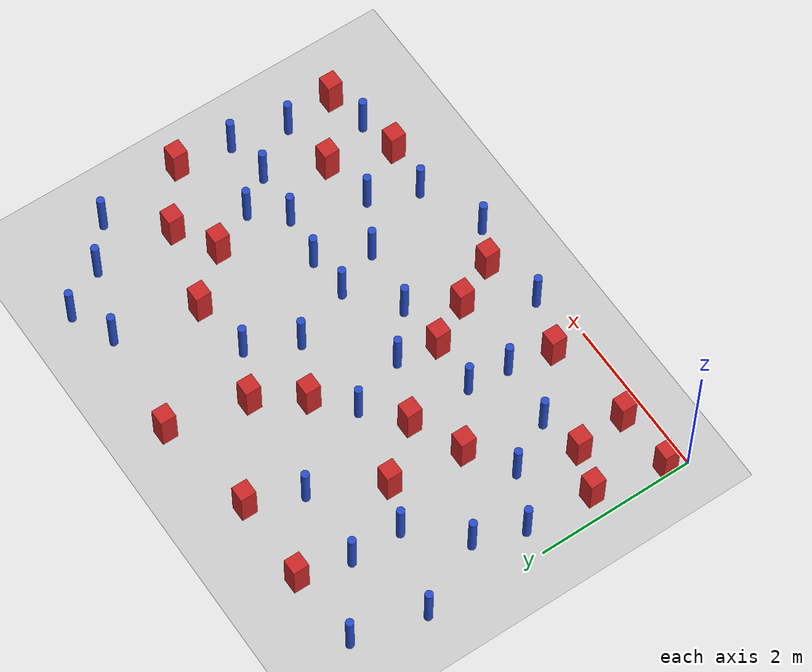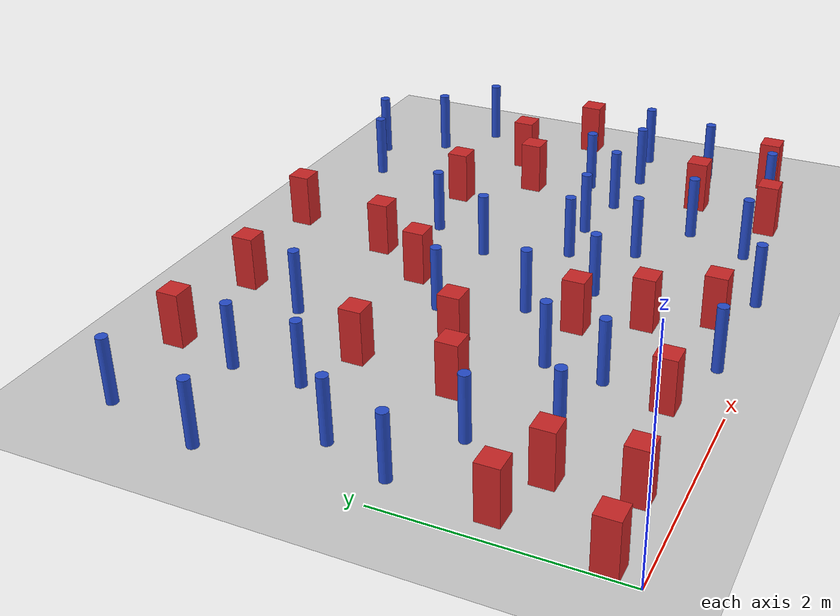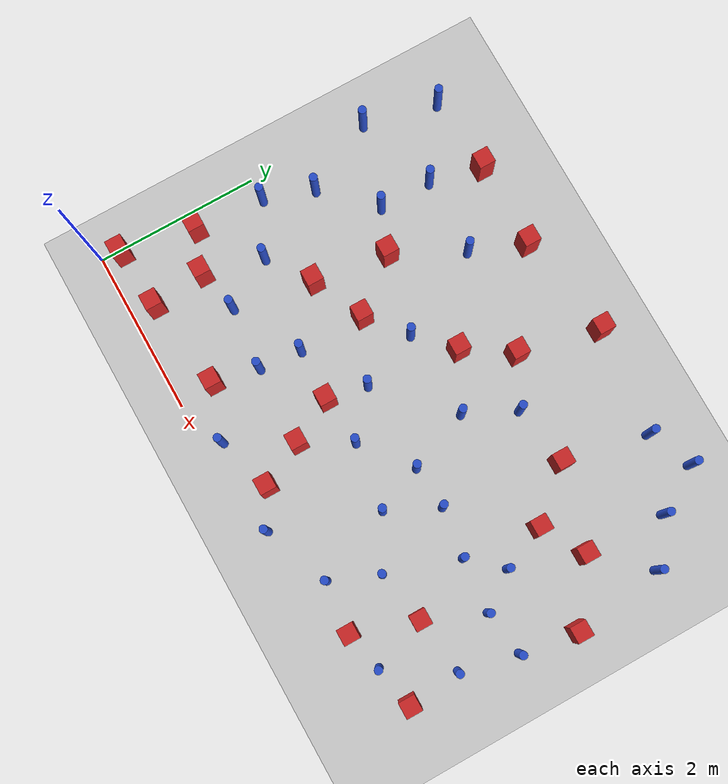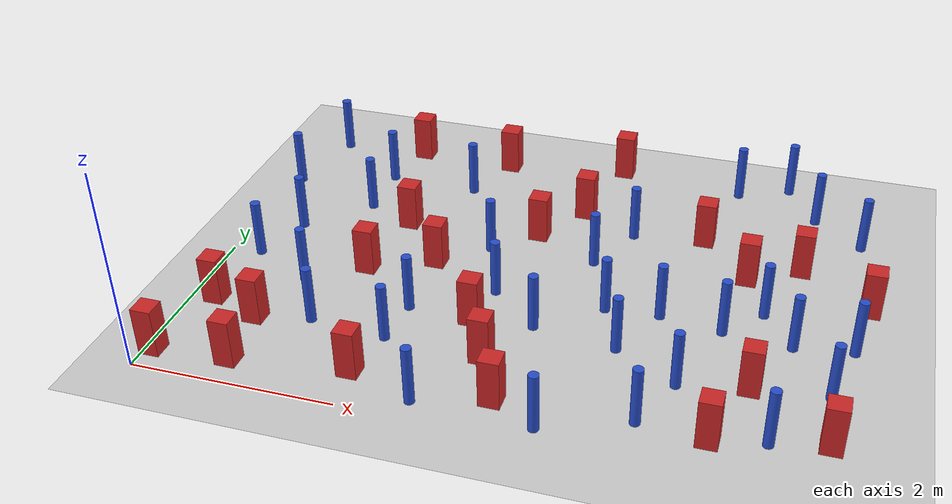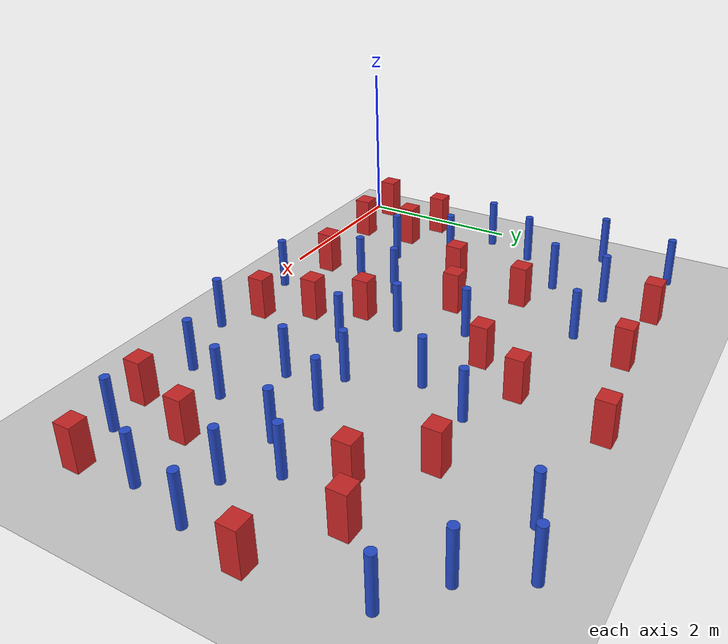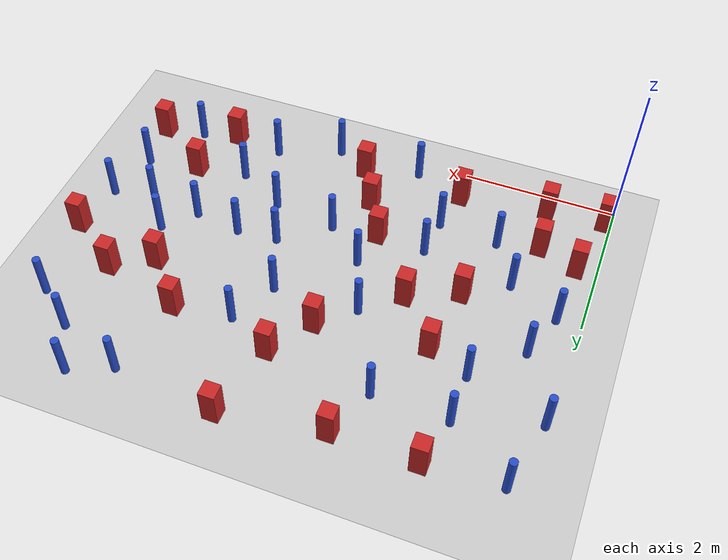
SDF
<sdf version="1.6">
 <world name="default">
  <model name="ground_plane">
   <static>1</static>
   <link name="link">
    <collision name="collision">
     <geometry><plane><normal>0 0 1</normal><size>100 100</size></plane></geometry>
     <surface><friction><ode><mu>100</mu><mu2>50</mu2></ode></friction></surface>
    </collision>
    <visual name="visual">
     <cast_shadows>0</cast_shadows>
     <geometry><plane><normal>0 0 1</normal><size>100 100</size></plane></geometry>
     <material>
      <ambient>1.0 1.0 1.0 1.0</ambient>
      <diffuse>0.8 0.8 0.8 1.0</diffuse>
      <specular>0.01 0.01 0.01 1.000000</specular>
     </material>
    </visual>
   </link>
  </model>
  <model name="square_post_obstacle0">
   <static>true</static>
   <pose>3.04580464808 0.973924702898 8.22691968438e-08 7.2212513382e-06 -7.54495500217e-07 2.29674213826e-05</pose>
   <link name="link">
    <pose>0 0 0.25 0 -0 0</pose>
    <inertial>
     <mass>100</mass>
     <inertia>
      <ixx>0.166667</ixx>
      <ixy>0</ixy>
      <ixz>0</ixz>
      <iyy>0.166667</iyy>
      <iyz>0</iyz>
      <izz>0.166667</izz>
     </inertia>
    </inertial>
    <collision name="collision"><geometry><box><size>.2 .2 .5</size></box></geometry></collision>
    <visual name="visual">
     <geometry><box><size>.2 .2 .5</size></box></geometry>
     <material>
      <script><name>Gazebo/Red</name><uri>file://media/materials/scripts/gazebo.material</uri></script>
     </material>
    </visual>
   </link>
  </model>
  <model name="pole_obstacle2">
   <static>true</static>
   <pose>5.45777131035 2.34422630777 2.88873142074e-08 -9.90536690245e-09 4.6021994898e-07 -1.20965994966e-07</pose>
   <link name="link">
    <pose>0 0 0.3 0 -0 0</pose>
    <inertial>
     <mass>1</mass>
     <inertia><ixx>0.145833</ixx><ixy>0</ixy><ixz>0</ixz><iyy>0.145833</iyy><iyz>0</iyz><izz>0.125</izz></inertia>
    </inertial>
    <collision name="collision">
     <geometry><cylinder><radius>0.05</radius><length>.6</length></cylinder></geometry>
    </collision>
    <visual name="visual">
     <geometry><cylinder><radius>0.05</radius><length>.6</length></cylinder></geometry>
     <material>
      <script><name>Gazebo/Blue</name><uri>file://media/materials/scripts/gazebo.material</uri></script>
     </material>
    </visual>
   </link>
  </model>
  <model name="pole_obstacle6">
   <static>true</static>
   <pose>2.04491357636 3.79223943982 2.88873142074e-08 -9.9053669043e-09 4.60219948975e-07 -1.2096599497e-07</pose>
   <link name="link">
    <pose>0 0 0.3 0 -0 0</pose>
    <inertial>
     <mass>1</mass>
     <inertia><ixx>0.145833</ixx><ixy>0</ixy><ixz>0</ixz><iyy>0.145833</iyy><iyz>0</iyz><izz>0.125</izz></inertia>
    </inertial>
    <collision name="collision">
     <geometry><cylinder><radius>0.05</radius><length>.6</length></cylinder></geometry>
    </collision>
    <visual name="visual">
     <geometry><cylinder><radius>0.05</radius><length>.6</length></cylinder></geometry>
     <material>
      <script><name>Gazebo/Blue</name><uri>file://media/materials/scripts/gazebo.material</uri></script>
     </material>
    </visual>
   </link>
  </model>
  <model name="square_post_obstacle10">
   <static>true</static>
   <pose>6.43679771532 2.68238782263 8.22691968438e-08 7.2212513382e-06 -7.54495500217e-07 2.29674213826e-05</pose>
   <link name="link">
    <pose>0 0 0.25 0 -0 0</pose>
    <inertial>
     <mass>100</mass>
     <inertia>
      <ixx>0.166667</ixx>
      <ixy>0</ixy>
      <ixz>0</ixz>
      <iyy>0.166667</iyy>
      <iyz>0</iyz>
      <izz>0.166667</izz>
     </inertia>
    </inertial>
    <collision name="collision"><geometry><box><size>.2 .2 .5</size></box></geometry></collision>
    <visual name="visual">
     <geometry><box><size>.2 .2 .5</size></box></geometry>
     <material>
      <script><name>Gazebo/Red</name><uri>file://media/materials/scripts/gazebo.material</uri></script>
     </material>
    </visual>
   </link>
  </model>
  <model name="pole_obstacle14">
   <static>true</static>
   <pose>2.58773399289 2.71610376358 2.88873142074e-08 -9.90536690232e-09 4.6021994898e-07 -1.20965994968e-07</pose>
   <link name="link">
    <pose>0 0 0.3 0 -0 0</pose>
    <inertial>
     <mass>1</mass>
     <inertia><ixx>0.145833</ixx><ixy>0</ixy><ixz>0</ixz><iyy>0.145833</iyy><iyz>0</iyz><izz>0.125</izz></inertia>
    </inertial>
    <collision name="collision">
     <geometry><cylinder><radius>0.05</radius><length>.6</length></cylinder></geometry>
    </collision>
    <visual name="visual">
     <geometry><cylinder><radius>0.05</radius><length>.6</length></cylinder></geometry>
     <material>
      <script><name>Gazebo/Blue</name><uri>file://media/materials/scripts/gazebo.material</uri></script>
     </material>
    </visual>
   </link>
  </model>
  <model name="pole_obstacle20">
   <static>true</static>
   <pose>0.95430784977 1.68152880618 2.88873142074e-08 -9.90536690202e-09 4.6021994898e-07 -1.20965994965e-07</pose>
   <link name="link">
    <pose>0 0 0.3 0 -0 0</pose>
    <inertial>
     <mass>1</mass>
     <inertia><ixx>0.145833</ixx><ixy>0</ixy><ixz>0</ixz><iyy>0.145833</iyy><iyz>0</iyz><izz>0.125</izz></inertia>
    </inertial>
    <collision name="collision">
     <geometry><cylinder><radius>0.05</radius><length>.6</length></cylinder></geometry>
    </collision>
    <visual name="visual">
     <geometry><cylinder><radius>0.05</radius><length>.6</length></cylinder></geometry>
     <material>
      <script><name>Gazebo/Blue</name><uri>file://media/materials/scripts/gazebo.material</uri></script>
     </material>
    </visual>
   </link>
  </model>
  <model name="pole_obstacle23">
   <static>true</static>
   <pose>5.45672125437 4.74769062917 2.88873142074e-08 -9.90536690842e-09 4.60219948965e-07 -1.20965994976e-07</pose>
   <link name="link">
    <pose>0 0 0.3 0 -0 0</pose>
    <inertial>
     <mass>1</mass>
     <inertia><ixx>0.145833</ixx><ixy>0</ixy><ixz>0</ixz><iyy>0.145833</iyy><iyz>0</iyz><izz>0.125</izz></inertia>
    </inertial>
    <collision name="collision">
     <geometry><cylinder><radius>0.05</radius><length>.6</length></cylinder></geometry>
    </collision>
    <visual name="visual">
     <geometry><cylinder><radius>0.05</radius><length>.6</length></cylinder></geometry>
     <material>
      <script><name>Gazebo/Blue</name><uri>file://media/materials/scripts/gazebo.material</uri></script>
     </material>
    </visual>
   </link>
  </model>
  <model name="square_post_obstacle20">
   <static>true</static>
   <pose>5.46462495724 1.21053023007 8.22691968438e-08 7.2212513382e-06 -7.54495500217e-07 2.29674213826e-05</pose>
   <link name="link">
    <pose>0 0 0.25 0 -0 0</pose>
    <inertial>
     <mass>100</mass>
     <inertia>
      <ixx>0.166667</ixx>
      <ixy>0</ixy>
      <ixz>0</ixz>
      <iyy>0.166667</iyy>
      <iyz>0</iyz>
      <izz>0.166667</izz>
     </inertia>
    </inertial>
    <collision name="collision"><geometry><box><size>.2 .2 .5</size></box></geometry></collision>
    <visual name="visual">
     <geometry><box><size>.2 .2 .5</size></box></geometry>
     <material>
      <script><name>Gazebo/Red</name><uri>file://media/materials/scripts/gazebo.material</uri></script>
     </material>
    </visual>
   </link>
  </model>
  <model name="pole_obstacle30">
   <static>true</static>
   <pose>1.30149947294 1.07301521637 2.88873142074e-08 -9.90536689672e-09 4.60219948993e-07 -1.20965994959e-07</pose>
   <link name="link">
    <pose>0 0 0.3 0 -0 0</pose>
    <inertial>
     <mass>1</mass>
     <inertia><ixx>0.145833</ixx><ixy>0</ixy><ixz>0</ixz><iyy>0.145833</iyy><iyz>0</iyz><izz>0.125</izz></inertia>
    </inertial>
    <collision name="collision">
     <geometry><cylinder><radius>0.05</radius><length>.6</length></cylinder></geometry>
    </collision>
    <visual name="visual">
     <geometry><cylinder><radius>0.05</radius><length>.6</length></cylinder></geometry>
     <material>
      <script><name>Gazebo/Blue</name><uri>file://media/materials/scripts/gazebo.material</uri></script>
     </material>
    </visual>
   </link>
  </model>
  <model name="pole_obstacle32">
   <static>true</static>
   <pose>4.92317373105 4.51609181594 2.88873142074e-08 -9.90536690842e-09 4.60219948965e-07 -1.20965994976e-07</pose>
   <link name="link">
    <pose>0 0 0.3 0 -0 0</pose>
    <inertial>
     <mass>1</mass>
     <inertia><ixx>0.145833</ixx><ixy>0</ixy><ixz>0</ixz><iyy>0.145833</iyy><iyz>0</iyz><izz>0.125</izz></inertia>
    </inertial>
    <collision name="collision">
     <geometry><cylinder><radius>0.05</radius><length>.6</length></cylinder></geometry>
    </collision>
    <visual name="visual">
     <geometry><cylinder><radius>0.05</radius><length>.6</length></cylinder></geometry>
     <material>
      <script><name>Gazebo/Blue</name><uri>file://media/materials/scripts/gazebo.material</uri></script>
     </material>
    </visual>
   </link>
  </model>
  <model name="square_post_obstacle36">
   <static>true</static>
   <pose>0.258428879469 1.14807808996 8.22691968438e-08 7.2212513382e-06 -7.54495500217e-07 2.29674213826e-05</pose>
   <link name="link">
    <pose>0 0 0.25 0 -0 0</pose>
    <inertial>
     <mass>100</mass>
     <inertia>
      <ixx>0.166667</ixx>
      <ixy>0</ixy>
      <ixz>0</ixz>
      <iyy>0.166667</iyy>
      <iyz>0</iyz>
      <izz>0.166667</izz>
     </inertia>
    </inertial>
    <collision name="collision"><geometry><box><size>.2 .2 .5</size></box></geometry></collision>
    <visual name="visual">
     <geometry><box><size>.2 .2 .5</size></box></geometry>
     <material>
      <script><name>Gazebo/Red</name><uri>file://media/materials/scripts/gazebo.material</uri></script>
     </material>
    </visual>
   </link>
  </model>
  <model name="square_post_obstacle39">
   <static>true</static>
   <pose>2.30296311528 4.43458114821 8.22691968438e-08 7.2212513382e-06 -7.54495500217e-07 2.29674213826e-05</pose>
   <link name="link">
    <pose>0 0 0.25 0 -0 0</pose>
    <inertial>
     <mass>100</mass>
     <inertia>
      <ixx>0.166667</ixx>
      <ixy>0</ixy>
      <ixz>0</ixz>
      <iyy>0.166667</iyy>
      <iyz>0</iyz>
      <izz>0.166667</izz>
     </inertia>
    </inertial>
    <collision name="collision"><geometry><box><size>.2 .2 .5</size></box></geometry></collision>
    <visual name="visual">
     <geometry><box><size>.2 .2 .5</size></box></geometry>
     <material>
      <script><name>Gazebo/Red</name><uri>file://media/materials/scripts/gazebo.material</uri></script>
     </material>
    </visual>
   </link>
  </model>
  <model name="pole_obstacle49">
   <static>true</static>
   <pose>1.08296176439 3.17078987473 2.88873142074e-08 -9.90536689791e-09 4.6021994899e-07 -1.20965994959e-07</pose>
   <link name="link">
    <pose>0 0 0.3 0 -0 0</pose>
    <inertial>
     <mass>1</mass>
     <inertia><ixx>0.145833</ixx><ixy>0</ixy><ixz>0</ixz><iyy>0.145833</iyy><iyz>0</iyz><izz>0.125</izz></inertia>
    </inertial>
    <collision name="collision">
     <geometry><cylinder><radius>0.05</radius><length>.6</length></cylinder></geometry>
    </collision>
    <visual name="visual">
     <geometry><cylinder><radius>0.05</radius><length>.6</length></cylinder></geometry>
     <material>
      <script><name>Gazebo/Blue</name><uri>file://media/materials/scripts/gazebo.material</uri></script>
     </material>
    </visual>
   </link>
  </model>
  <model name="pole_obstacle53">
   <static>true</static>
   <pose>2.62495455351 0.22612331151 2.88873142074e-08 -9.90536689395e-09 4.60219949e-07 -1.20965994954e-07</pose>
   <link name="link">
    <pose>0 0 0.3 0 -0 0</pose>
    <inertial>
     <mass>1</mass>
     <inertia><ixx>0.145833</ixx><ixy>0</ixy><ixz>0</ixz><iyy>0.145833</iyy><iyz>0</iyz><izz>0.125</izz></inertia>
    </inertial>
    <collision name="collision">
     <geometry><cylinder><radius>0.05</radius><length>.6</length></cylinder></geometry>
    </collision>
    <visual name="visual">
     <geometry><cylinder><radius>0.05</radius><length>.6</length></cylinder></geometry>
     <material>
      <script><name>Gazebo/Blue</name><uri>file://media/materials/scripts/gazebo.material</uri></script>
     </material>
    </visual>
   </link>
  </model>
  <model name="pole_obstacle59">
   <static>true</static>
   <pose>3.96785897545 3.36974669086 2.88873142074e-08 -9.90536690919e-09 4.60219948964e-07 -1.20965994979e-07</pose>
   <link name="link">
    <pose>0 0 0.3 0 -0 0</pose>
    <inertial>
     <mass>1</mass>
     <inertia><ixx>0.145833</ixx><ixy>0</ixy><ixz>0</ixz><iyy>0.145833</iyy><iyz>0</iyz><izz>0.125</izz></inertia>
    </inertial>
    <collision name="collision">
     <geometry><cylinder><radius>0.05</radius><length>.6</length></cylinder></geometry>
    </collision>
    <visual name="visual">
     <geometry><cylinder><radius>0.05</radius><length>.6</length></cylinder></geometry>
     <material>
      <script><name>Gazebo/Blue</name><uri>file://media/materials/scripts/gazebo.material</uri></script>
     </material>
    </visual>
   </link>
  </model>
  <model name="square_post_obstacle48">
   <static>true</static>
   <pose>2.12343648834 2.33251311773 8.22691968438e-08 7.2212513382e-06 -7.54495500217e-07 2.29674213826e-05</pose>
   <link name="link">
    <pose>0 0 0.25 0 -0 0</pose>
    <inertial>
     <mass>100</mass>
     <inertia>
      <ixx>0.166667</ixx>
      <ixy>0</ixy>
      <ixz>0</ixz>
      <iyy>0.166667</iyy>
      <iyz>0</iyz>
      <izz>0.166667</izz>
     </inertia>
    </inertial>
    <collision name="collision"><geometry><box><size>.2 .2 .5</size></box></geometry></collision>
    <visual name="visual">
     <geometry><box><size>.2 .2 .5</size></box></geometry>
     <material>
      <script><name>Gazebo/Red</name><uri>file://media/materials/scripts/gazebo.material</uri></script>
     </material>
    </visual>
   </link>
  </model>
  <model name="square_post_obstacle50">
   <static>true</static>
   <pose>2.77005549722 1.49828917938 8.22691968438e-08 7.2212513382e-06 -7.54495500217e-07 2.29674213826e-05</pose>
   <link name="link">
    <pose>0 0 0.25 0 -0 0</pose>
    <inertial>
     <mass>100</mass>
     <inertia>
      <ixx>0.166667</ixx>
      <ixy>0</ixy>
      <ixz>0</ixz>
      <iyy>0.166667</iyy>
      <iyz>0</iyz>
      <izz>0.166667</izz>
     </inertia>
    </inertial>
    <collision name="collision"><geometry><box><size>.2 .2 .5</size></box></geometry></collision>
    <visual name="visual">
     <geometry><box><size>.2 .2 .5</size></box></geometry>
     <material>
      <script><name>Gazebo/Red</name><uri>file://media/materials/scripts/gazebo.material</uri></script>
     </material>
    </visual>
   </link>
  </model>
  <model name="square_post_obstacle55">
   <static>true</static>
   <pose>1.24052296039 4.4428766237 8.22691968438e-08 7.2212513382e-06 -7.54495500217e-07 2.29674213826e-05</pose>
   <link name="link">
    <pose>0 0 0.25 0 -0 0</pose>
    <inertial>
     <mass>100</mass>
     <inertia>
      <ixx>0.166667</ixx>
      <ixy>0</ixy>
      <ixz>0</ixz>
      <iyy>0.166667</iyy>
      <iyz>0</iyz>
      <izz>0.166667</izz>
     </inertia>
    </inertial>
    <collision name="collision"><geometry><box><size>.2 .2 .5</size></box></geometry></collision>
    <visual name="visual">
     <geometry><box><size>.2 .2 .5</size></box></geometry>
     <material>
      <script><name>Gazebo/Red</name><uri>file://media/materials/scripts/gazebo.material</uri></script>
     </material>
    </visual>
   </link>
  </model>
  <model name="square_post_obstacle59">
   <static>true</static>
   <pose>3.37557135459 3.66950542198 8.22691968438e-08 7.2212513382e-06 -7.54495500217e-07 2.29674213826e-05</pose>
   <link name="link">
    <pose>0 0 0.25 0 -0 0</pose>
    <inertial>
     <mass>100</mass>
     <inertia>
      <ixx>0.166667</ixx>
      <ixy>0</ixy>
      <ixz>0</ixz>
      <iyy>0.166667</iyy>
      <iyz>0</iyz>
      <izz>0.166667</izz>
     </inertia>
    </inertial>
    <collision name="collision"><geometry><box><size>.2 .2 .5</size></box></geometry></collision>
    <visual name="visual">
     <geometry><box><size>.2 .2 .5</size></box></geometry>
     <material>
      <script><name>Gazebo/Red</name><uri>file://media/materials/scripts/gazebo.material</uri></script>
     </material>
    </visual>
   </link>
  </model>
  <model name="square_post_obstacle65">
   <static>true</static>
   <pose>4.70421875662 3.47562799886 8.22691968438e-08 7.2212513382e-06 -7.54495500217e-07 2.29674213826e-05</pose>
   <link name="link">
    <pose>0 0 0.25 0 -0 0</pose>
    <inertial>
     <mass>100</mass>
     <inertia>
      <ixx>0.166667</ixx>
      <ixy>0</ixy>
      <ixz>0</ixz>
      <iyy>0.166667</iyy>
      <iyz>0</iyz>
      <izz>0.166667</izz>
     </inertia>
    </inertial>
    <collision name="collision"><geometry><box><size>.2 .2 .5</size></box></geometry></collision>
    <visual name="visual">
     <geometry><box><size>.2 .2 .5</size></box></geometry>
     <material>
      <script><name>Gazebo/Red</name><uri>file://media/materials/scripts/gazebo.material</uri></script>
     </material>
    </visual>
   </link>
  </model>
  <model name="pole_obstacle77">
   <static>true</static>
   <pose>0.0829624721579 3.48288292947 2.88873142074e-08 -9.90536689907e-09 4.60219948988e-07 -1.20965994961e-07</pose>
   <link name="link">
    <pose>0 0 0.3 0 -0 0</pose>
    <inertial>
     <mass>1</mass>
     <inertia><ixx>0.145833</ixx><ixy>0</ixy><ixz>0</ixz><iyy>0.145833</iyy><iyz>0</iyz><izz>0.125</izz></inertia>
    </inertial>
    <collision name="collision">
     <geometry><cylinder><radius>0.05</radius><length>.6</length></cylinder></geometry>
    </collision>
    <visual name="visual">
     <geometry><cylinder><radius>0.05</radius><length>.6</length></cylinder></geometry>
     <material>
      <script><name>Gazebo/Blue</name><uri>file://media/materials/scripts/gazebo.material</uri></script>
     </material>
    </visual>
   </link>
  </model>
  <model name="square_post_obstacle73">
   <static>true</static>
   <pose>5.22164903736 2.88928919019 8.22691968438e-08 7.2212513382e-06 -7.54495500217e-07 2.29674213826e-05</pose>
   <link name="link">
    <pose>0 0 0.25 0 -0 0</pose>
    <inertial>
     <mass>100</mass>
     <inertia>
      <ixx>0.166667</ixx>
      <ixy>0</ixy>
      <ixz>0</ixz>
      <iyy>0.166667</iyy>
      <iyz>0</iyz>
      <izz>0.166667</izz>
     </inertia>
    </inertial>
    <collision name="collision"><geometry><box><size>.2 .2 .5</size></box></geometry></collision>
    <visual name="visual">
     <geometry><box><size>.2 .2 .5</size></box></geometry>
     <material>
      <script><name>Gazebo/Red</name><uri>file://media/materials/scripts/gazebo.material</uri></script>
     </material>
    </visual>
   </link>
  </model>
  <model name="pole_obstacle92">
   <static>true</static>
   <pose>2.07862077537 1.00634107424 2.88873142074e-08 -9.90536692432e-09 4.60219948928e-07 -1.2096599499e-07</pose>
   <link name="link">
    <pose>0 0 0.3 0 -0 0</pose>
    <inertial>
     <mass>1</mass>
     <inertia><ixx>0.145833</ixx><ixy>0</ixy><ixz>0</ixz><iyy>0.145833</iyy><iyz>0</iyz><izz>0.125</izz></inertia>
    </inertial>
    <collision name="collision">
     <geometry><cylinder><radius>0.05</radius><length>.6</length></cylinder></geometry>
    </collision>
    <visual name="visual">
     <geometry><cylinder><radius>0.05</radius><length>.6</length></cylinder></geometry>
     <material>
      <script><name>Gazebo/Blue</name><uri>file://media/materials/scripts/gazebo.material</uri></script>
     </material>
    </visual>
   </link>
  </model>
  <model name="square_post_obstacle94">
   <static>true</static>
   <pose>0.0878403575449 0.254519244113 8.22691968438e-08 7.2212513382e-06 -7.54495500217e-07 2.29674213826e-05</pose>
   <link name="link">
    <pose>0 0 0.25 0 -0 0</pose>
    <inertial>
     <mass>100</mass>
     <inertia>
      <ixx>0.166667</ixx>
      <ixy>0</ixy>
      <ixz>0</ixz>
      <iyy>0.166667</iyy>
      <iyz>0</iyz>
      <izz>0.166667</izz>
     </inertia>
    </inertial>
    <collision name="collision"><geometry><box><size>.2 .2 .5</size></box></geometry></collision>
    <visual name="visual">
     <geometry><box><size>.2 .2 .5</size></box></geometry>
     <material>
      <script><name>Gazebo/Red</name><uri>file://media/materials/scripts/gazebo.material</uri></script>
     </material>
    </visual>
   </link>
  </model>
  <model name="pole_obstacle104">
   <static>true</static>
   <pose>5.78963744642 4.18799203884 2.88873142074e-08 -9.90536690842e-09 4.60219948965e-07 -1.20965994976e-07</pose>
   <link name="link">
    <pose>0 0 0.3 0 -0 0</pose>
    <inertial>
     <mass>1</mass>
     <inertia><ixx>0.145833</ixx><ixy>0</ixy><ixz>0</ixz><iyy>0.145833</iyy><iyz>0</iyz><izz>0.125</izz></inertia>
    </inertial>
    <collision name="collision">
     <geometry><cylinder><radius>0.05</radius><length>.6</length></cylinder></geometry>
    </collision>
    <visual name="visual">
     <geometry><cylinder><radius>0.05</radius><length>.6</length></cylinder></geometry>
     <material>
      <script><name>Gazebo/Blue</name><uri>file://media/materials/scripts/gazebo.material</uri></script>
     </material>
    </visual>
   </link>
  </model>
  <model name="square_post_obstacle100">
   <static>true</static>
   <pose>5.73233366058 3.1875269093 8.22691968438e-08 7.2212513382e-06 -7.54495500217e-07 2.29674213826e-05</pose>
   <link name="link">
    <pose>0 0 0.25 0 -0 0</pose>
    <inertial>
     <mass>100</mass>
     <inertia>
      <ixx>0.166667</ixx>
      <ixy>0</ixy>
      <ixz>0</ixz>
      <iyy>0.166667</iyy>
      <iyz>0</iyz>
      <izz>0.166667</izz>
     </inertia>
    </inertial>
    <collision name="collision"><geometry><box><size>.2 .2 .5</size></box></geometry></collision>
    <visual name="visual">
     <geometry><box><size>.2 .2 .5</size></box></geometry>
     <material>
      <script><name>Gazebo/Red</name><uri>file://media/materials/scripts/gazebo.material</uri></script>
     </material>
    </visual>
   </link>
  </model>
  <model name="pole_obstacle111">
   <static>true</static>
   <pose>0.289990314903 4.38085286651 2.88873142074e-08 -9.90536689592e-09 4.60219948995e-07 -1.20965994956e-07</pose>
   <link name="link">
    <pose>0 0 0.3 0 -0 0</pose>
    <inertial>
     <mass>1</mass>
     <inertia><ixx>0.145833</ixx><ixy>0</ixy><ixz>0</ixz><iyy>0.145833</iyy><iyz>0</iyz><izz>0.125</izz></inertia>
    </inertial>
    <collision name="collision">
     <geometry><cylinder><radius>0.05</radius><length>.6</length></cylinder></geometry>
    </collision>
    <visual name="visual">
     <geometry><cylinder><radius>0.05</radius><length>.6</length></cylinder></geometry>
     <material>
      <script><name>Gazebo/Blue</name><uri>file://media/materials/scripts/gazebo.material</uri></script>
     </material>
    </visual>
   </link>
  </model>
  <model name="square_post_obstacle106">
   <static>true</static>
   <pose>1.96487640219 0.457601085435 8.22691968438e-08 7.2212513382e-06 -7.54495500217e-07 2.29674213826e-05</pose>
   <link name="link">
    <pose>0 0 0.25 0 -0 0</pose>
    <inertial>
     <mass>100</mass>
     <inertia>
      <ixx>0.166667</ixx>
      <ixy>0</ixy>
      <ixz>0</ixz>
      <iyy>0.166667</iyy>
      <iyz>0</iyz>
      <izz>0.166667</izz>
     </inertia>
    </inertial>
    <collision name="collision"><geometry><box><size>.2 .2 .5</size></box></geometry></collision>
    <visual name="visual">
     <geometry><box><size>.2 .2 .5</size></box></geometry>
     <material>
      <script><name>Gazebo/Red</name><uri>file://media/materials/scripts/gazebo.material</uri></script>
     </material>
    </visual>
   </link>
  </model>
  <model name="square_post_obstacle109">
   <static>true</static>
   <pose>5.21018973061 0.446559665905 8.22691968438e-08 7.2212513382e-06 -7.54495500217e-07 2.29674213826e-05</pose>
   <link name="link">
    <pose>0 0 0.25 0 -0 0</pose>
    <inertial>
     <mass>100</mass>
     <inertia>
      <ixx>0.166667</ixx>
      <ixy>0</ixy>
      <ixz>0</ixz>
      <iyy>0.166667</iyy>
      <iyz>0</iyz>
      <izz>0.166667</izz>
     </inertia>
    </inertial>
    <collision name="collision"><geometry><box><size>.2 .2 .5</size></box></geometry></collision>
    <visual name="visual">
     <geometry><box><size>.2 .2 .5</size></box></geometry>
     <material>
      <script><name>Gazebo/Red</name><uri>file://media/materials/scripts/gazebo.material</uri></script>
     </material>
    </visual>
   </link>
  </model>
  <model name="pole_obstacle113">
   <static>true</static>
   <pose>4.49748043408 2.05281818103 2.88873142074e-08 -9.90536690245e-09 4.6021994898e-07 -1.20965994966e-07</pose>
   <link name="link">
    <pose>0 0 0.3 0 -0 0</pose>
    <inertial>
     <mass>1</mass>
     <inertia><ixx>0.145833</ixx><ixy>0</ixy><ixz>0</ixz><iyy>0.145833</iyy><iyz>0</iyz><izz>0.125</izz></inertia>
    </inertial>
    <collision name="collision">
     <geometry><cylinder><radius>0.05</radius><length>.6</length></cylinder></geometry>
    </collision>
    <visual name="visual">
     <geometry><cylinder><radius>0.05</radius><length>.6</length></cylinder></geometry>
     <material>
      <script><name>Gazebo/Blue</name><uri>file://media/materials/scripts/gazebo.material</uri></script>
     </material>
    </visual>
   </link>
  </model>
  <model name="pole_obstacle120">
   <static>true</static>
   <pose>0.309950525666 1.99965346876 2.88873142074e-08 -9.90536689904e-09 4.60219948988e-07 -1.20965994961e-07</pose>
   <link name="link">
    <pose>0 0 0.3 0 -0 0</pose>
    <inertial>
     <mass>1</mass>
     <inertia><ixx>0.145833</ixx><ixy>0</ixy><ixz>0</ixz><iyy>0.145833</iyy><iyz>0</iyz><izz>0.125</izz></inertia>
    </inertial>
    <collision name="collision">
     <geometry><cylinder><radius>0.05</radius><length>.6</length></cylinder></geometry>
    </collision>
    <visual name="visual">
     <geometry><cylinder><radius>0.05</radius><length>.6</length></cylinder></geometry>
     <material>
      <script><name>Gazebo/Blue</name><uri>file://media/materials/scripts/gazebo.material</uri></script>
     </material>
    </visual>
   </link>
  </model>
  <model name="pole_obstacle121">
   <static>true</static>
   <pose>3.76362023641 0.189085510142 2.88873142074e-08 -9.90536689209e-09 4.60219949004e-07 -1.20965994952e-07</pose>
   <link name="link">
    <pose>0 0 0.3 0 -0 0</pose>
    <inertial>
     <mass>1</mass>
     <inertia><ixx>0.145833</ixx><ixy>0</ixy><ixz>0</ixz><iyy>0.145833</iyy><iyz>0</iyz><izz>0.125</izz></inertia>
    </inertial>
    <collision name="collision">
     <geometry><cylinder><radius>0.05</radius><length>.6</length></cylinder></geometry>
    </collision>
    <visual name="visual">
     <geometry><cylinder><radius>0.05</radius><length>.6</length></cylinder></geometry>
     <material>
      <script><name>Gazebo/Blue</name><uri>file://media/materials/scripts/gazebo.material</uri></script>
     </material>
    </visual>
   </link>
  </model>
  <model name="pole_obstacle131">
   <static>true</static>
   <pose>4.57786762807 0.504219230127 2.88873142074e-08 -9.90536689326e-09 4.60219949001e-07 -1.20965994954e-07</pose>
   <link name="link">
    <pose>0 0 0.3 0 -0 0</pose>
    <inertial>
     <mass>1</mass>
     <inertia><ixx>0.145833</ixx><ixy>0</ixy><ixz>0</ixz><iyy>0.145833</iyy><iyz>0</iyz><izz>0.125</izz></inertia>
    </inertial>
    <collision name="collision">
     <geometry><cylinder><radius>0.05</radius><length>.6</length></cylinder></geometry>
    </collision>
    <visual name="visual">
     <geometry><cylinder><radius>0.05</radius><length>.6</length></cylinder></geometry>
     <material>
      <script><name>Gazebo/Blue</name><uri>file://media/materials/scripts/gazebo.material</uri></script>
     </material>
    </visual>
   </link>
  </model>
  <model name="square_post_obstacle139">
   <static>true</static>
   <pose>3.00607049683 3.10921335863 8.22691968438e-08 7.2212513382e-06 -7.54495500217e-07 2.29674213826e-05</pose>
   <link name="link">
    <pose>0 0 0.25 0 -0 0</pose>
    <inertial>
     <mass>100</mass>
     <inertia>
      <ixx>0.166667</ixx>
      <ixy>0</ixy>
      <ixz>0</ixz>
      <iyy>0.166667</iyy>
      <iyz>0</iyz>
      <izz>0.166667</izz>
     </inertia>
    </inertial>
    <collision name="collision"><geometry><box><size>.2 .2 .5</size></box></geometry></collision>
    <visual name="visual">
     <geometry><box><size>.2 .2 .5</size></box></geometry>
     <material>
      <script><name>Gazebo/Red</name><uri>file://media/materials/scripts/gazebo.material</uri></script>
     </material>
    </visual>
   </link>
  </model>
  <model name="pole_obstacle148">
   <static>true</static>
   <pose>4.82260050434 1.08666423013 2.88873142074e-08 -9.90536689445e-09 4.60219948999e-07 -1.20965994956e-07</pose>
   <link name="link">
    <pose>0 0 0.3 0 -0 0</pose>
    <inertial>
     <mass>1</mass>
     <inertia><ixx>0.145833</ixx><ixy>0</ixy><ixz>0</ixz><iyy>0.145833</iyy><iyz>0</iyz><izz>0.125</izz></inertia>
    </inertial>
    <collision name="collision">
     <geometry><cylinder><radius>0.05</radius><length>.6</length></cylinder></geometry>
    </collision>
    <visual name="visual">
     <geometry><cylinder><radius>0.05</radius><length>.6</length></cylinder></geometry>
     <material>
      <script><name>Gazebo/Blue</name><uri>file://media/materials/scripts/gazebo.material</uri></script>
     </material>
    </visual>
   </link>
  </model>
  <model name="pole_obstacle150">
   <static>true</static>
   <pose>3.6758072505 2.76409450539 2.88873142074e-08 -9.90536690232e-09 4.6021994898e-07 -1.20965994968e-07</pose>
   <link name="link">
    <pose>0 0 0.3 0 -0 0</pose>
    <inertial>
     <mass>1</mass>
     <inertia><ixx>0.145833</ixx><ixy>0</ixy><ixz>0</ixz><iyy>0.145833</iyy><iyz>0</iyz><izz>0.125</izz></inertia>
    </inertial>
    <collision name="collision">
     <geometry><cylinder><radius>0.05</radius><length>.6</length></cylinder></geometry>
    </collision>
    <visual name="visual">
     <geometry><cylinder><radius>0.05</radius><length>.6</length></cylinder></geometry>
     <material>
      <script><name>Gazebo/Blue</name><uri>file://media/materials/scripts/gazebo.material</uri></script>
     </material>
    </visual>
   </link>
  </model>
  <model name="pole_obstacle153">
   <static>true</static>
   <pose>2.86447588049 1.99538706781 2.88873142074e-08 -9.90536690039e-09 4.60219948984e-07 -1.20965994965e-07</pose>
   <link name="link">
    <pose>0 0 0.3 0 -0 0</pose>
    <inertial>
     <mass>1</mass>
     <inertia><ixx>0.145833</ixx><ixy>0</ixy><ixz>0</ixz><iyy>0.145833</iyy><iyz>0</iyz><izz>0.125</izz></inertia>
    </inertial>
    <collision name="collision">
     <geometry><cylinder><radius>0.05</radius><length>.6</length></cylinder></geometry>
    </collision>
    <visual name="visual">
     <geometry><cylinder><radius>0.05</radius><length>.6</length></cylinder></geometry>
     <material>
      <script><name>Gazebo/Blue</name><uri>file://media/materials/scripts/gazebo.material</uri></script>
     </material>
    </visual>
   </link>
  </model>
  <model name="pole_obstacle158">
   <static>true</static>
   <pose>0.515043369221 2.59953333537 2.88873142074e-08 -9.90536689505e-09 4.60219948997e-07 -1.20965994956e-07</pose>
   <link name="link">
    <pose>0 0 0.3 0 -0 0</pose>
    <inertial>
     <mass>1</mass>
     <inertia><ixx>0.145833</ixx><ixy>0</ixy><ixz>0</ixz><iyy>0.145833</iyy><iyz>0</iyz><izz>0.125</izz></inertia>
    </inertial>
    <collision name="collision">
     <geometry><cylinder><radius>0.05</radius><length>.6</length></cylinder></geometry>
    </collision>
    <visual name="visual">
     <geometry><cylinder><radius>0.05</radius><length>.6</length></cylinder></geometry>
     <material>
      <script><name>Gazebo/Blue</name><uri>file://media/materials/scripts/gazebo.material</uri></script>
     </material>
    </visual>
   </link>
  </model>
  <model name="pole_obstacle159">
   <static>true</static>
   <pose>6.29119415545 3.79628323319 2.88873142074e-08 -9.90536690245e-09 4.6021994898e-07 -1.20965994966e-07</pose>
   <link name="link">
    <pose>0 0 0.3 0 -0 0</pose>
    <inertial>
     <mass>1</mass>
     <inertia><ixx>0.145833</ixx><ixy>0</ixy><ixz>0</ixz><iyy>0.145833</iyy><iyz>0</iyz><izz>0.125</izz></inertia>
    </inertial>
    <collision name="collision">
     <geometry><cylinder><radius>0.05</radius><length>.6</length></cylinder></geometry>
    </collision>
    <visual name="visual">
     <geometry><cylinder><radius>0.05</radius><length>.6</length></cylinder></geometry>
     <material>
      <script><name>Gazebo/Blue</name><uri>file://media/materials/scripts/gazebo.material</uri></script>
     </material>
    </visual>
   </link>
  </model>
  <model name="square_post_obstacle157">
   <static>true</static>
   <pose>0.769955373216 0.959763356409 8.22691968438e-08 7.2212513382e-06 -7.54495500217e-07 2.29674213826e-05</pose>
   <link name="link">
    <pose>0 0 0.25 0 -0 0</pose>
    <inertial>
     <mass>100</mass>
     <inertia>
      <ixx>0.166667</ixx>
      <ixy>0</ixy>
      <ixz>0</ixz>
      <iyy>0.166667</iyy>
      <iyz>0</iyz>
      <izz>0.166667</izz>
     </inertia>
    </inertial>
    <collision name="collision"><geometry><box><size>.2 .2 .5</size></box></geometry></collision>
    <visual name="visual">
     <geometry><box><size>.2 .2 .5</size></box></geometry>
     <material>
      <script><name>Gazebo/Red</name><uri>file://media/materials/scripts/gazebo.material</uri></script>
     </material>
    </visual>
   </link>
  </model>
  <model name="square_post_obstacle163">
   <static>true</static>
   <pose>1.48745946388 2.04044951096 8.22691968438e-08 7.2212513382e-06 -7.54495500217e-07 2.29674213826e-05</pose>
   <link name="link">
    <pose>0 0 0.25 0 -0 0</pose>
    <inertial>
     <mass>100</mass>
     <inertia>
      <ixx>0.166667</ixx>
      <ixy>0</ixy>
      <ixz>0</ixz>
      <iyy>0.166667</iyy>
      <iyz>0</iyz>
      <izz>0.166667</izz>
     </inertia>
    </inertial>
    <collision name="collision"><geometry><box><size>.2 .2 .5</size></box></geometry></collision>
    <visual name="visual">
     <geometry><box><size>.2 .2 .5</size></box></geometry>
     <material>
      <script><name>Gazebo/Red</name><uri>file://media/materials/scripts/gazebo.material</uri></script>
     </material>
    </visual>
   </link>
  </model>
  <model name="pole_obstacle166">
   <static>true</static>
   <pose>6.17002146254 1.29720774772 2.88873142074e-08 -9.90536689445e-09 4.60219948999e-07 -1.20965994956e-07</pose>
   <link name="link">
    <pose>0 0 0.3 0 -0 0</pose>
    <inertial>
     <mass>1</mass>
     <inertia><ixx>0.145833</ixx><ixy>0</ixy><ixz>0</ixz><iyy>0.145833</iyy><iyz>0</iyz><izz>0.125</izz></inertia>
    </inertial>
    <collision name="collision">
     <geometry><cylinder><radius>0.05</radius><length>.6</length></cylinder></geometry>
    </collision>
    <visual name="visual">
     <geometry><cylinder><radius>0.05</radius><length>.6</length></cylinder></geometry>
     <material>
      <script><name>Gazebo/Blue</name><uri>file://media/materials/scripts/gazebo.material</uri></script>
     </material>
    </visual>
   </link>
  </model>
  <model name="pole_obstacle167">
   <static>true</static>
   <pose>6.33454669633 1.99099626219 2.88873142074e-08 -9.90536689273e-09 4.60219949003e-07 -1.20965994953e-07</pose>
   <link name="link">
    <pose>0 0 0.3 0 -0 0</pose>
    <inertial>
     <mass>1</mass>
     <inertia><ixx>0.145833</ixx><ixy>0</ixy><ixz>0</ixz><iyy>0.145833</iyy><iyz>0</iyz><izz>0.125</izz></inertia>
    </inertial>
    <collision name="collision">
     <geometry><cylinder><radius>0.05</radius><length>.6</length></cylinder></geometry>
    </collision>
    <visual name="visual">
     <geometry><cylinder><radius>0.05</radius><length>.6</length></cylinder></geometry>
     <material>
      <script><name>Gazebo/Blue</name><uri>file://media/materials/scripts/gazebo.material</uri></script>
     </material>
    </visual>
   </link>
  </model>
  <model name="square_post_obstacle169">
   <static>true</static>
   <pose>3.59924669489 4.65561601747 8.22691968438e-08 7.2212513382e-06 -7.54495500217e-07 2.29674213826e-05</pose>
   <link name="link">
    <pose>0 0 0.25 0 -0 0</pose>
    <inertial>
     <mass>100</mass>
     <inertia>
      <ixx>0.166667</ixx>
      <ixy>0</ixy>
      <ixz>0</ixz>
      <iyy>0.166667</iyy>
      <iyz>0</iyz>
      <izz>0.166667</izz>
     </inertia>
    </inertial>
    <collision name="collision"><geometry><box><size>.2 .2 .5</size></box></geometry></collision>
    <visual name="visual">
     <geometry><box><size>.2 .2 .5</size></box></geometry>
     <material>
      <script><name>Gazebo/Red</name><uri>file://media/materials/scripts/gazebo.material</uri></script>
     </material>
    </visual>
   </link>
  </model>
  <model name="pole_obstacle171">
   <static>true</static>
   <pose>3.37416762604 1.5531651861 2.88873142074e-08 -9.90536689395e-09 4.60219949e-07 -1.20965994953e-07</pose>
   <link name="link">
    <pose>0 0 0.3 0 -0 0</pose>
    <inertial>
     <mass>1</mass>
     <inertia><ixx>0.145833</ixx><ixy>0</ixy><ixz>0</ixz><iyy>0.145833</iyy><iyz>0</iyz><izz>0.125</izz></inertia>
    </inertial>
    <collision name="collision">
     <geometry><cylinder><radius>0.05</radius><length>.6</length></cylinder></geometry>
    </collision>
    <visual name="visual">
     <geometry><cylinder><radius>0.05</radius><length>.6</length></cylinder></geometry>
     <material>
      <script><name>Gazebo/Blue</name><uri>file://media/materials/scripts/gazebo.material</uri></script>
     </material>
    </visual>
   </link>
  </model>
  <model name="pole_obstacle178">
   <static>true</static>
   <pose>1.08814125093 3.8149538162 2.88873142074e-08 -9.90536689791e-09 4.6021994899e-07 -1.20965994959e-07</pose>
   <link name="link">
    <pose>0 0 0.3 0 -0 0</pose>
    <inertial>
     <mass>1</mass>
     <inertia><ixx>0.145833</ixx><ixy>0</ixy><ixz>0</ixz><iyy>0.145833</iyy><iyz>0</iyz><izz>0.125</izz></inertia>
    </inertial>
    <collision name="collision">
     <geometry><cylinder><radius>0.05</radius><length>.6</length></cylinder></geometry>
    </collision>
    <visual name="visual">
     <geometry><cylinder><radius>0.05</radius><length>.6</length></cylinder></geometry>
     <material>
      <script><name>Gazebo/Blue</name><uri>file://media/materials/scripts/gazebo.material</uri></script>
     </material>
    </visual>
   </link>
  </model>
  <model name="pole_obstacle181">
   <static>true</static>
   <pose>5.10882492839 1.9667095073 2.88873142074e-08 -9.90536689273e-09 4.60219949003e-07 -1.20965994953e-07</pose>
   <link name="link">
    <pose>0 0 0.3 0 -0 0</pose>
    <inertial>
     <mass>1</mass>
     <inertia><ixx>0.145833</ixx><ixy>0</ixy><ixz>0</ixz><iyy>0.145833</iyy><iyz>0</iyz><izz>0.125</izz></inertia>
    </inertial>
    <collision name="collision">
     <geometry><cylinder><radius>0.05</radius><length>.6</length></cylinder></geometry>
    </collision>
    <visual name="visual">
     <geometry><cylinder><radius>0.05</radius><length>.6</length></cylinder></geometry>
     <material>
      <script><name>Gazebo/Blue</name><uri>file://media/materials/scripts/gazebo.material</uri></script>
     </material>
    </visual>
   </link>
  </model>
  <model name="pole_obstacle184">
   <static>true</static>
   <pose>5.70580261519 0.549078540055 2.88873142074e-08 -9.90536689326e-09 4.60219949001e-07 -1.20965994954e-07</pose>
   <link name="link">
    <pose>0 0 0.3 0 -0 0</pose>
    <inertial>
     <mass>1</mass>
     <inertia><ixx>0.145833</ixx><ixy>0</ixy><ixz>0</ixz><iyy>0.145833</iyy><iyz>0</iyz><izz>0.125</izz></inertia>
    </inertial>
    <collision name="collision">
     <geometry><cylinder><radius>0.05</radius><length>.6</length></cylinder></geometry>
    </collision>
    <visual name="visual">
     <geometry><cylinder><radius>0.05</radius><length>.6</length></cylinder></geometry>
     <material>
      <script><name>Gazebo/Blue</name><uri>file://media/materials/scripts/gazebo.material</uri></script>
     </material>
    </visual>
   </link>
  </model>
  <model name="pole_obstacle186">
   <static>true</static>
   <pose>5.77417161439 1.90964845646 2.88873142074e-08 -9.90536689445e-09 4.60219948999e-07 -1.20965994956e-07</pose>
   <link name="link">
    <pose>0 0 0.3 0 -0 0</pose>
    <inertial>
     <mass>1</mass>
     <inertia><ixx>0.145833</ixx><ixy>0</ixy><ixz>0</ixz><iyy>0.145833</iyy><iyz>0</iyz><izz>0.125</izz></inertia>
    </inertial>
    <collision name="collision">
     <geometry><cylinder><radius>0.05</radius><length>.6</length></cylinder></geometry>
    </collision>
    <visual name="visual">
     <geometry><cylinder><radius>0.05</radius><length>.6</length></cylinder></geometry>
     <material>
      <script><name>Gazebo/Blue</name><uri>file://media/materials/scripts/gazebo.material</uri></script>
     </material>
    </visual>
   </link>
  </model>
  <model name="square_post_obstacle202">
   <static>true</static>
   <pose>3.31504576875 0.434543478326 8.22691968438e-08 7.2212513382e-06 -7.54495500217e-07 2.29674213826e-05</pose>
   <link name="link">
    <pose>0 0 0.25 0 -0 0</pose>
    <inertial>
     <mass>100</mass>
     <inertia>
      <ixx>0.166667</ixx>
      <ixy>0</ixy>
      <ixz>0</ixz>
      <iyy>0.166667</iyy>
      <iyz>0</iyz>
      <izz>0.166667</izz>
     </inertia>
    </inertial>
    <collision name="collision"><geometry><box><size>.2 .2 .5</size></box></geometry></collision>
    <visual name="visual">
     <geometry><box><size>.2 .2 .5</size></box></geometry>
     <material>
      <script><name>Gazebo/Red</name><uri>file://media/materials/scripts/gazebo.material</uri></script>
     </material>
    </visual>
   </link>
  </model>
  <model name="square_post_obstacle207">
   <static>true</static>
   <pose>6.21670429842 0.658301211426 8.22691968438e-08 7.2212513382e-06 -7.54495500217e-07 2.29674213826e-05</pose>
   <link name="link">
    <pose>0 0 0.25 0 -0 0</pose>
    <inertial>
     <mass>100</mass>
     <inertia>
      <ixx>0.166667</ixx>
      <ixy>0</ixy>
      <ixz>0</ixz>
      <iyy>0.166667</iyy>
      <iyz>0</iyz>
      <izz>0.166667</izz>
     </inertia>
    </inertial>
    <collision name="collision"><geometry><box><size>.2 .2 .5</size></box></geometry></collision>
    <visual name="visual">
     <geometry><box><size>.2 .2 .5</size></box></geometry>
     <material>
      <script><name>Gazebo/Red</name><uri>file://media/materials/scripts/gazebo.material</uri></script>
     </material>
    </visual>
   </link>
  </model>
  <model name="square_post_obstacle215">
   <static>true</static>
   <pose>1.61028611658 2.9559523254 8.22691968438e-08 7.2212513382e-06 -7.54495500217e-07 2.29674213826e-05</pose>
   <link name="link">
    <pose>0 0 0.25 0 -0 0</pose>
    <inertial>
     <mass>100</mass>
     <inertia>
      <ixx>0.166667</ixx>
      <ixy>0</ixy>
      <ixz>0</ixz>
      <iyy>0.166667</iyy>
      <iyz>0</iyz>
      <izz>0.166667</izz>
     </inertia>
    </inertial>
    <collision name="collision"><geometry><box><size>.2 .2 .5</size></box></geometry></collision>
    <visual name="visual">
     <geometry><box><size>.2 .2 .5</size></box></geometry>
     <material>
      <script><name>Gazebo/Red</name><uri>file://media/materials/scripts/gazebo.material</uri></script>
     </material>
    </visual>
   </link>
  </model>
  <model name="pole_obstacle199">
   <static>true</static>
   <pose>4.20178294809 1.43800830429 2.88873142074e-08 -9.90536689445e-09 4.60219948999e-07 -1.20965994956e-07</pose>
   <link name="link">
    <pose>0 0 0.3 0 -0 0</pose>
    <inertial>
     <mass>1</mass>
     <inertia><ixx>0.145833</ixx><ixy>0</ixy><ixz>0</ixz><iyy>0.145833</iyy><iyz>0</iyz><izz>0.125</izz></inertia>
    </inertial>
    <collision name="collision">
     <geometry><cylinder><radius>0.05</radius><length>.6</length></cylinder></geometry>
    </collision>
    <visual name="visual">
     <geometry><cylinder><radius>0.05</radius><length>.6</length></cylinder></geometry>
     <material>
      <script><name>Gazebo/Blue</name><uri>file://media/materials/scripts/gazebo.material</uri></script>
     </material>
    </visual>
   </link>
  </model>
  <model name="pole_obstacle201">
   <static>true</static>
   <pose>3.96612742113 2.01359987004 2.88873142074e-08 -9.90536692239e-09 4.60219948932e-07 -1.20965994986e-07</pose>
   <link name="link">
    <pose>0 0 0.3 0 -0 0</pose>
    <inertial>
     <mass>1</mass>
     <inertia><ixx>0.145833</ixx><ixy>0</ixy><ixz>0</ixz><iyy>0.145833</iyy><iyz>0</iyz><izz>0.125</izz></inertia>
    </inertial>
    <collision name="collision">
     <geometry><cylinder><radius>0.05</radius><length>.6</length></cylinder></geometry>
    </collision>
    <visual name="visual">
     <geometry><cylinder><radius>0.05</radius><length>.6</length></cylinder></geometry>
     <material>
      <script><name>Gazebo/Blue</name><uri>file://media/materials/scripts/gazebo.material</uri></script>
     </material>
    </visual>
   </link>
  </model>
  <model name="pole_obstacle207">
   <static>true</static>
   <pose>2.13150150593 1.52099677048 2.88873142074e-08 -9.90536689395e-09 4.60219949e-07 -1.20965994953e-07</pose>
   <link name="link">
    <pose>0 0 0.3 0 -0 0</pose>
    <inertial>
     <mass>1</mass>
     <inertia><ixx>0.145833</ixx><ixy>0</ixy><ixz>0</ixz><iyy>0.145833</iyy><iyz>0</iyz><izz>0.125</izz></inertia>
    </inertial>
    <collision name="collision">
     <geometry><cylinder><radius>0.05</radius><length>.6</length></cylinder></geometry>
    </collision>
    <visual name="visual">
     <geometry><cylinder><radius>0.05</radius><length>.6</length></cylinder></geometry>
     <material>
      <script><name>Gazebo/Blue</name><uri>file://media/materials/scripts/gazebo.material</uri></script>
     </material>
    </visual>
   </link>
  </model>
  <model name="square_post_obstacle226">
   <static>true</static>
   <pose>0.834711032622 0.301393964659 8.22691968438e-08 7.2212513382e-06 -7.54495500217e-07 2.29674213826e-05</pose>
   <link name="link">
    <pose>0 0 0.25 0 -0 0</pose>
    <inertial>
     <mass>100</mass>
     <inertia>
      <ixx>0.166667</ixx>
      <ixy>0</ixy>
      <ixz>0</ixz>
      <iyy>0.166667</iyy>
      <iyz>0</iyz>
      <izz>0.166667</izz>
     </inertia>
    </inertial>
    <collision name="collision"><geometry><box><size>.2 .2 .5</size></box></geometry></collision>
    <visual name="visual">
     <geometry><box><size>.2 .2 .5</size></box></geometry>
     <material>
      <script><name>Gazebo/Red</name><uri>file://media/materials/scripts/gazebo.material</uri></script>
     </material>
    </visual>
   </link>
  </model>
 </world>
</sdf>
